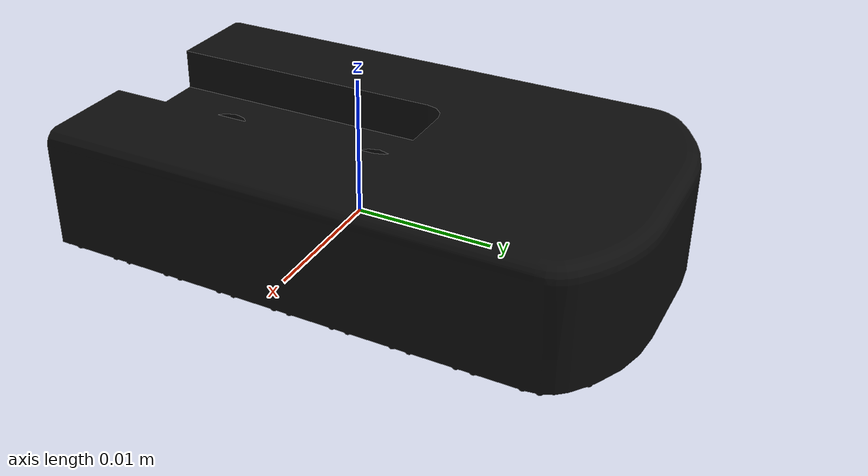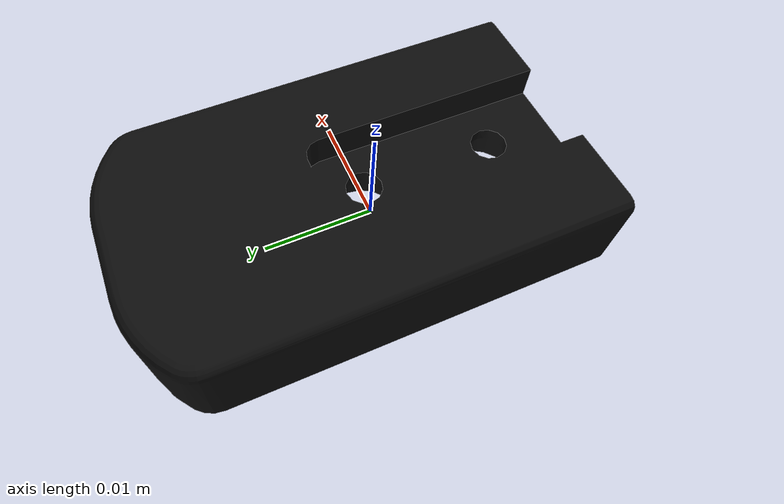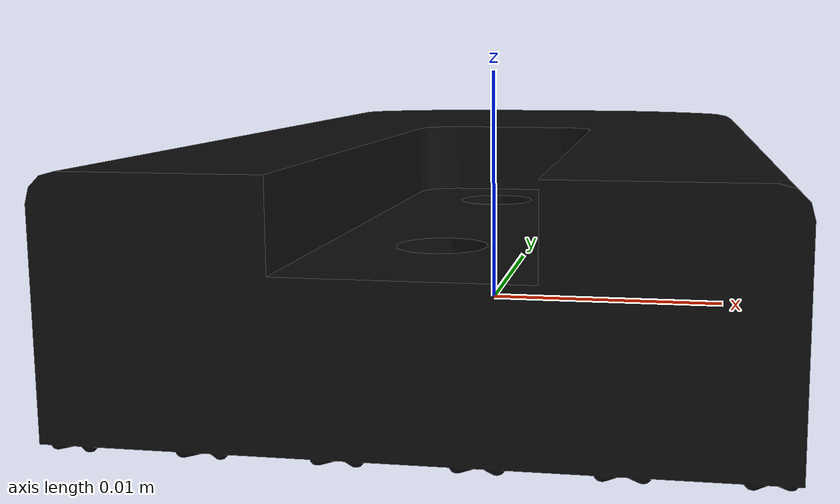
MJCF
<mujoco model="pad_link">
  <default>
    <default class="visual">
      <geom group="2" type="mesh" contype="0" conaffinity="0"/>
    </default>
    <default class="collision">
      <geom group="3" type="mesh"/>
    </default>
  </default>
  <asset>
    <material name="black_rubber" specular="0.5" shininess="0.09" rgba="0.050000 0.050000 0.050000 1.000000"/>
    <mesh file="pad_link.obj"/>
    <mesh file="pad_link_collision_0.obj"/>
    <mesh file="pad_link_collision_1.obj"/>
    <mesh file="pad_link_collision_2.obj"/>
  </asset>
  <worldbody>
    <body name="pad_link">
      <geom material="black_rubber" mesh="pad_link" class="visual"/>
      <geom mesh="pad_link_collision_0" rgba="0.9640972851194175 0.9734911067433988 0.0988959391266081 1" class="collision"/>
      <geom mesh="pad_link_collision_1" rgba="0.40132652392593415 0.07755756496996102 0.6798104377235289 1" class="collision"/>
      <geom mesh="pad_link_collision_2" rgba="0.21226098262723614 0.490332829714903 0.15508865699748497 1" class="collision"/>
    </body>
  </worldbody>
</mujoco>
